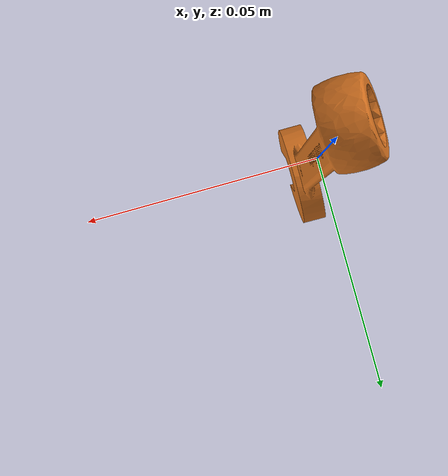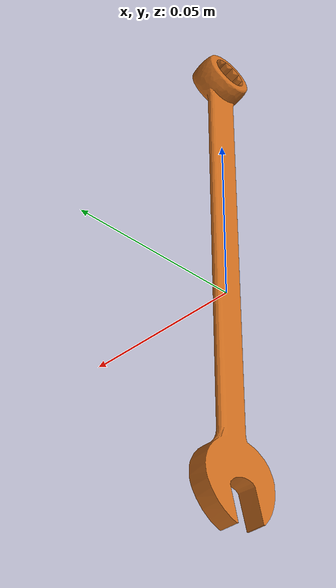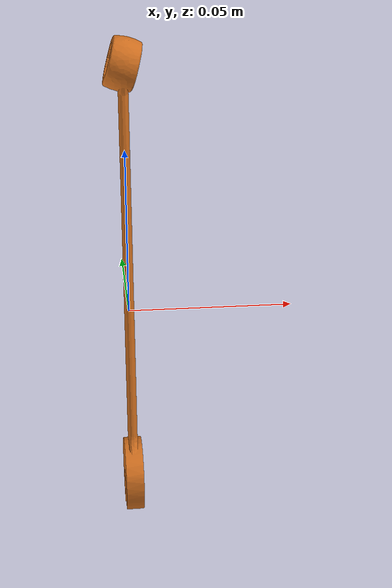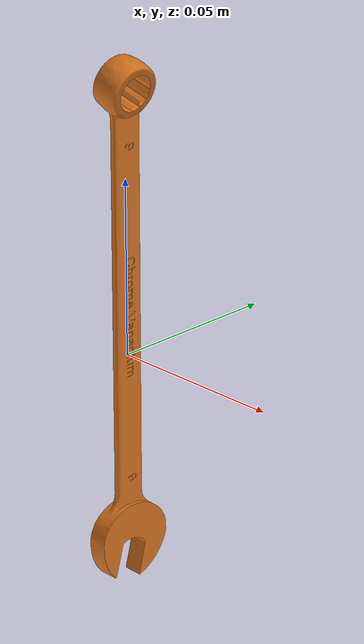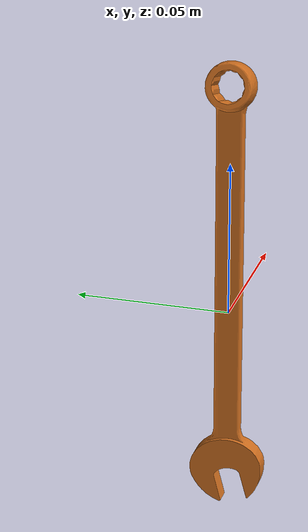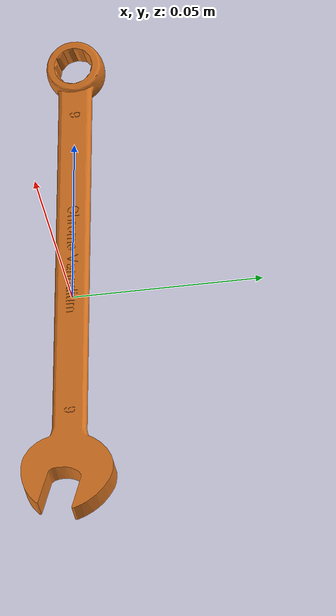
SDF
<?xml version="1.0"?>
<sdf version="1.7">
  <model name="combination_wrench_09mm_bright">
    <pose>0 0 0 0 0 0</pose>
    <static>false</static>
    <link name="link">
      <!-- link frame = tool CoM; Z = long axis (+ toward tool end), X = forward, Y = Z x X -->
      <inertial>
        <pose>0 0 0 0 0 0</pose>
        <mass>0.041471</mass>
        <inertia>
          <ixx>1.047041e-04</ixx>
          <ixy>7.006728e-21</ixy>
          <ixz>2.736005e-23</ixz>
          <iyy>1.039190e-04</iyy>
          <iyz>-7.217930e-23</iyz>
          <izz>9.687325e-07</izz>
        </inertia>
      </inertial>
      <collision name="collision">
        <geometry>
          <mesh>
            <uri>model://combination_wrench_09mm/meshes/combination_wrench_09mm.dae</uri>
          </mesh>
        </geometry>
      </collision>
      <visual name="visual">
        <geometry>
          <mesh>
            <uri>model://combination_wrench_09mm/meshes/combination_wrench_09mm.dae</uri>
          </mesh>
        </geometry>
        <material>
          <ambient>0.369 0.196 0.055 1.0</ambient>
          <diffuse>0.820 0.437 0.123 1.0</diffuse>
          <specular>0.85 0.85 0.85 1.0</specular>
          <emissive>0 0 0 1.0</emissive>
        </material>
      </visual>
    </link>
  </model>
</sdf>
